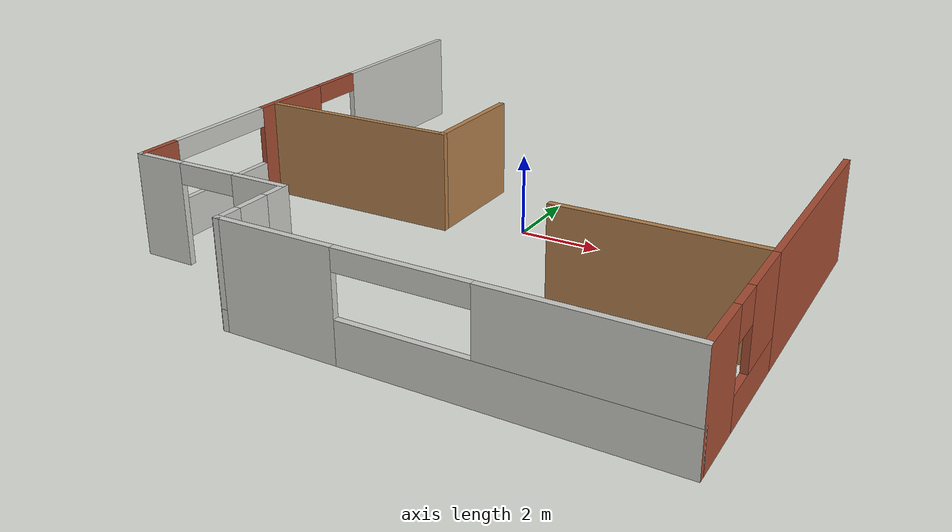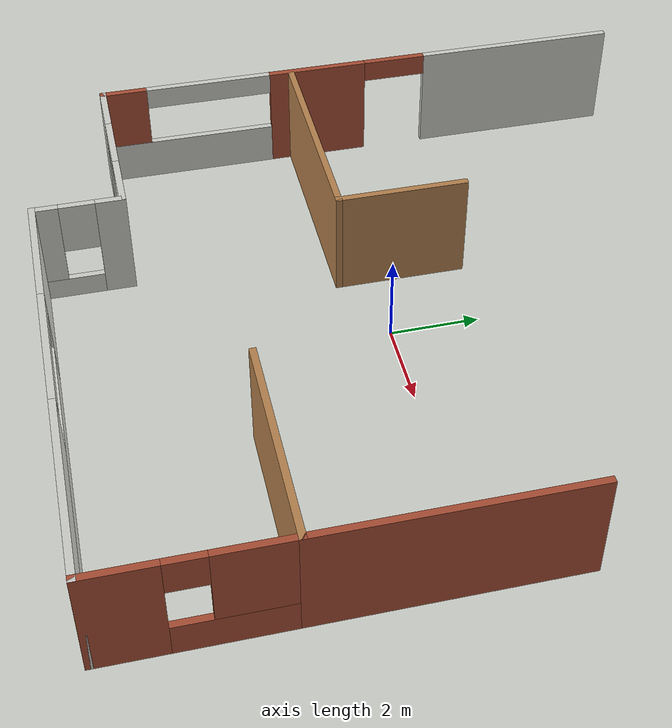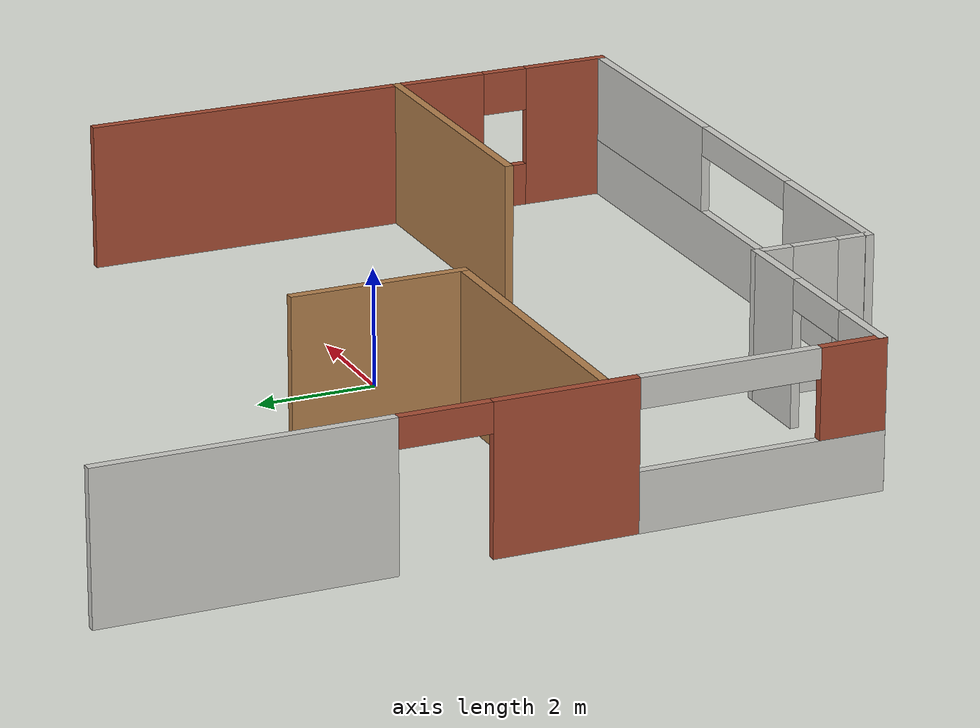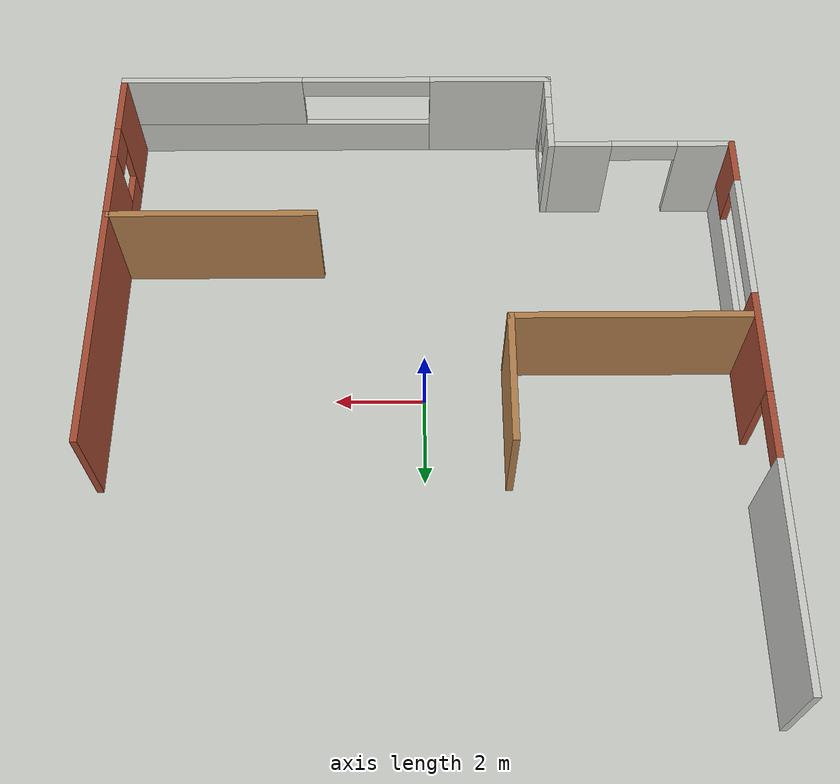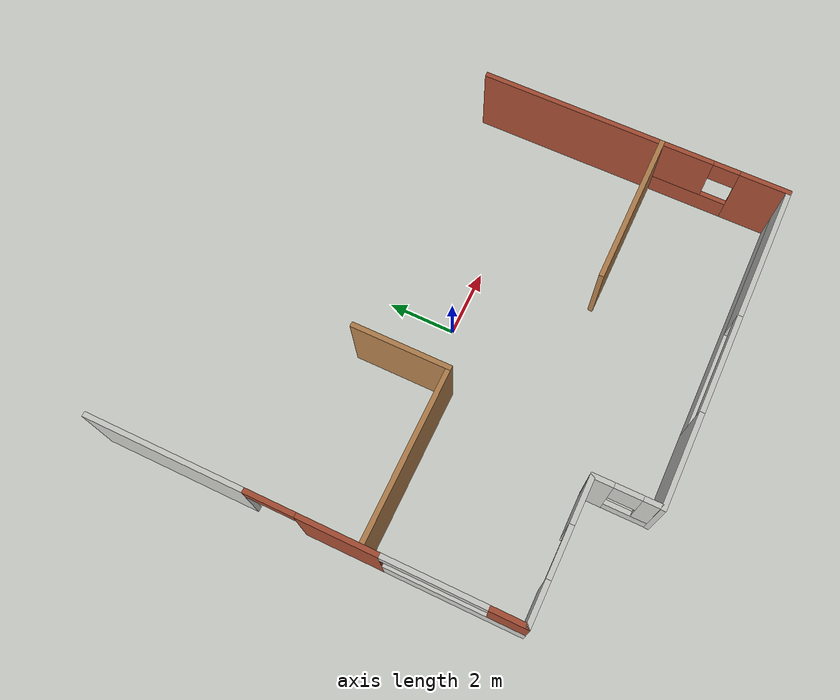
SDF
<sdf version="1.6">
 <model name="mybuilding_0">
  <link name="Wall_100">
   <pose>-4.97405 -5.32475 0 0 -0 0</pose>
   <inertial>
    <mass>1</mass>
    <inertia><ixx>1</ixx><ixy>0</ixy><ixz>0</ixz><iyy>1</iyy><iyz>0</iyz><izz>1</izz></inertia>
   </inertial>
   <visual name="Wall_100_Visual_0">
    <pose>-1.47284 0 1.25 0 -0 0</pose>
    <geometry><box><size>1.30431 0.15 2.5</size></box></geometry>
    <material>
     <script><uri>file://media/materials/scripts/gazebo.material</uri><name>Gazebo/CeilingTiled</name></script>
     <ambient>0.435 0.796 0.675 1</ambient>
     <diffuse>1 1 1 1</diffuse>
     <specular>0 0 0 1</specular>
     <emissive>0 0 0 1</emissive>
     <shader type="vertex"><normal_map>__default__</normal_map></shader>
    </material>
   </visual>
   <visual name="Wall_100_Visual_1">
    <pose>1.40216 0 1.25 0 -0 0</pose>
    <geometry><box><size>1.44569 0.15 2.5</size></box></geometry>
    <material>
     <script><uri>file://media/materials/scripts/gazebo.material</uri><name>Gazebo/CeilingTiled</name></script>
     <ambient>0.435 0.796 0.675 1</ambient>
     <diffuse>1 1 1 1</diffuse>
     <specular>0 0 0 1</specular>
     <emissive>0 0 0 1</emissive>
     <shader type="vertex"><normal_map>__default__</normal_map></shader>
    </material>
   </visual>
   <visual name="Wall_100_Visual_2">
    <pose>-0.07069 0 2.25 0 -0 0</pose>
    <geometry><box><size>1.5 0.15 0.5</size></box></geometry>
    <material>
     <script><uri>file://media/materials/scripts/gazebo.material</uri><name>Gazebo/CeilingTiled</name></script>
     <ambient>0.435 0.796 0.675 1</ambient>
     <diffuse>1 1 1 1</diffuse>
     <specular>0 0 0 1</specular>
     <emissive>0 0 0 1</emissive>
     <shader type="vertex"><normal_map>__default__</normal_map></shader>
    </material>
   </visual>
   <collision name="Wall_100_Collision_0">
    <pose>-1.47284 0 1.25 0 -0 0</pose>
    <geometry><box><size>1.30431 0.15 2.5</size></box></geometry>
    <surface>
     <friction>
      <ode><mu>1</mu><mu2>1</mu2><fdir1>0 0 0</fdir1><slip1>0</slip1><slip2>0</slip2></ode>
      <torsional>
       <coefficient>1</coefficient>
       <patch_radius>0</patch_radius>
       <surface_radius>0</surface_radius>
       <use_patch_radius>1</use_patch_radius>
       <ode><slip>0</slip></ode>
      </torsional>
     </friction>
     <bounce><restitution_coefficient>0</restitution_coefficient><threshold>1e+06</threshold></bounce>
     <contact>
      <collide_without_contact>0</collide_without_contact>
      <collide_without_contact_bitmask>1</collide_without_contact_bitmask>
      <collide_bitmask>1</collide_bitmask>
      <ode>
       <soft_cfm>0</soft_cfm>
       <soft_erp>0.2</soft_erp>
       <kp>1e+13</kp>
       <kd>1</kd>
       <max_vel>0.01</max_vel>
       <min_depth>0</min_depth>
      </ode>
      <bullet>
       <split_impulse>1</split_impulse>
       <split_impulse_penetration_threshold>-0.01</split_impulse_penetration_threshold>
       <soft_cfm>0</soft_cfm>
       <soft_erp>0.2</soft_erp>
       <kp>1e+13</kp>
       <kd>1</kd>
      </bullet>
     </contact>
    </surface>
   </collision>
   <collision name="Wall_100_Collision_1">
    <pose>1.40216 0 1.25 0 -0 0</pose>
    <geometry><box><size>1.44569 0.15 2.5</size></box></geometry>
    <surface>
     <friction>
      <ode><mu>1</mu><mu2>1</mu2><fdir1>0 0 0</fdir1><slip1>0</slip1><slip2>0</slip2></ode>
      <torsional>
       <coefficient>1</coefficient>
       <patch_radius>0</patch_radius>
       <surface_radius>0</surface_radius>
       <use_patch_radius>1</use_patch_radius>
       <ode><slip>0</slip></ode>
      </torsional>
     </friction>
     <bounce><restitution_coefficient>0</restitution_coefficient><threshold>1e+06</threshold></bounce>
     <contact>
      <collide_without_contact>0</collide_without_contact>
      <collide_without_contact_bitmask>1</collide_without_contact_bitmask>
      <collide_bitmask>1</collide_bitmask>
      <ode>
       <soft_cfm>0</soft_cfm>
       <soft_erp>0.2</soft_erp>
       <kp>1e+13</kp>
       <kd>1</kd>
       <max_vel>0.01</max_vel>
       <min_depth>0</min_depth>
      </ode>
      <bullet>
       <split_impulse>1</split_impulse>
       <split_impulse_penetration_threshold>-0.01</split_impulse_penetration_threshold>
       <soft_cfm>0</soft_cfm>
       <soft_erp>0.2</soft_erp>
       <kp>1e+13</kp>
       <kd>1</kd>
      </bullet>
     </contact>
    </surface>
   </collision>
   <collision name="Wall_100_Collision_2">
    <pose>-0.07069 0 2.25 0 -0 0</pose>
    <geometry><box><size>1.5 0.15 0.5</size></box></geometry>
    <surface>
     <friction>
      <ode><mu>1</mu><mu2>1</mu2><fdir1>0 0 0</fdir1><slip1>0</slip1><slip2>0</slip2></ode>
      <torsional>
       <coefficient>1</coefficient>
       <patch_radius>0</patch_radius>
       <surface_radius>0</surface_radius>
       <use_patch_radius>1</use_patch_radius>
       <ode><slip>0</slip></ode>
      </torsional>
     </friction>
     <bounce><restitution_coefficient>0</restitution_coefficient><threshold>1e+06</threshold></bounce>
     <contact>
      <collide_without_contact>0</collide_without_contact>
      <collide_without_contact_bitmask>1</collide_without_contact_bitmask>
      <collide_bitmask>1</collide_bitmask>
      <ode>
       <soft_cfm>0</soft_cfm>
       <soft_erp>0.2</soft_erp>
       <kp>1e+13</kp>
       <kd>1</kd>
       <max_vel>0.01</max_vel>
       <min_depth>0</min_depth>
      </ode>
      <bullet>
       <split_impulse>1</split_impulse>
       <split_impulse_penetration_threshold>-0.01</split_impulse_penetration_threshold>
       <soft_cfm>0</soft_cfm>
       <soft_erp>0.2</soft_erp>
       <kp>1e+13</kp>
       <kd>1</kd>
      </bullet>
     </contact>
    </surface>
   </collision>
  </link>
  <link name="Wall_102">
   <pose>-2.91535 -6.30192 0 0 0 -1.5708</pose>
   <inertial>
    <mass>1</mass>
    <inertia><ixx>1</ixx><ixy>0</ixy><ixz>0</ixz><iyy>1</iyy><iyz>0</iyz><izz>1</izz></inertia>
   </inertial>
   <visual name="Wall_102_Visual_0">
    <pose>-0.715877 0 1.25 0 -0 0</pose>
    <geometry><box><size>0.672904 0.15 2.5</size></box></geometry>
    <material>
     <script><uri>file://media/materials/scripts/gazebo.material</uri><name>Gazebo/CeilingTiled</name></script>
     <ambient>1 0.765 0.306 1</ambient>
     <diffuse>1 1 1 1</diffuse>
     <specular>0 0 0 1</specular>
     <emissive>0 0 0 1</emissive>
     <shader type="vertex"><normal_map>__default__</normal_map></shader>
    </material>
   </visual>
   <visual name="Wall_102_Visual_1">
    <pose>0.336452 0 0.25 0 -0 0</pose>
    <geometry><box><size>1.43175 0.15 0.5</size></box></geometry>
    <material>
     <script><uri>file://media/materials/scripts/gazebo.material</uri><name>Gazebo/CeilingTiled</name></script>
     <ambient>1 0.765 0.306 1</ambient>
     <diffuse>1 1 1 1</diffuse>
     <specular>0 0 0 1</specular>
     <emissive>0 0 0 1</emissive>
     <shader type="vertex"><normal_map>__default__</normal_map></shader>
    </material>
   </visual>
   <visual name="Wall_102_Visual_3">
    <pose>0.020576 0 1.9 0 -0 0</pose>
    <geometry><box><size>0.8 0.15 1.2</size></box></geometry>
    <material>
     <script><uri>file://media/materials/scripts/gazebo.material</uri><name>Gazebo/CeilingTiled</name></script>
     <ambient>1 0.765 0.306 1</ambient>
     <diffuse>1 1 1 1</diffuse>
     <specular>0 0 0 1</specular>
     <emissive>0 0 0 1</emissive>
     <shader type="vertex"><normal_map>__default__</normal_map></shader>
    </material>
   </visual>
   <visual name="Wall_102_Visual_2">
    <pose>0.736452 0 1.5 0 -0 0</pose>
    <geometry><box><size>0.631753 0.15 2</size></box></geometry>
    <material>
     <script><uri>file://media/materials/scripts/gazebo.material</uri><name>Gazebo/CeilingTiled</name></script>
     <ambient>1 0.765 0.306 1</ambient>
     <diffuse>1 1 1 1</diffuse>
     <specular>0 0 0 1</specular>
     <emissive>0 0 0 1</emissive>
     <shader type="vertex"><normal_map>__default__</normal_map></shader>
    </material>
   </visual>
   <collision name="Wall_102_Collision_3">
    <pose>0.020576 0 1.9 0 -0 0</pose>
    <geometry><box><size>0.8 0.15 1.2</size></box></geometry>
    <surface>
     <friction>
      <ode><mu>1</mu><mu2>1</mu2><fdir1>0 0 0</fdir1><slip1>0</slip1><slip2>0</slip2></ode>
      <torsional>
       <coefficient>1</coefficient>
       <patch_radius>0</patch_radius>
       <surface_radius>0</surface_radius>
       <use_patch_radius>1</use_patch_radius>
       <ode><slip>0</slip></ode>
      </torsional>
     </friction>
     <bounce><restitution_coefficient>0</restitution_coefficient><threshold>1e+06</threshold></bounce>
     <contact>
      <collide_without_contact>0</collide_without_contact>
      <collide_without_contact_bitmask>1</collide_without_contact_bitmask>
      <collide_bitmask>1</collide_bitmask>
      <ode>
       <soft_cfm>0</soft_cfm>
       <soft_erp>0.2</soft_erp>
       <kp>1e+13</kp>
       <kd>1</kd>
       <max_vel>0.01</max_vel>
       <min_depth>0</min_depth>
      </ode>
      <bullet>
       <split_impulse>1</split_impulse>
       <split_impulse_penetration_threshold>-0.01</split_impulse_penetration_threshold>
       <soft_cfm>0</soft_cfm>
       <soft_erp>0.2</soft_erp>
       <kp>1e+13</kp>
       <kd>1</kd>
      </bullet>
     </contact>
    </surface>
   </collision>
   <collision name="Wall_102_Collision_0">
    <pose>-0.715877 0 1.25 0 -0 0</pose>
    <geometry><box><size>0.672904 0.15 2.5</size></box></geometry>
    <surface>
     <friction>
      <ode><mu>1</mu><mu2>1</mu2><fdir1>0 0 0</fdir1><slip1>0</slip1><slip2>0</slip2></ode>
      <torsional>
       <coefficient>1</coefficient>
       <patch_radius>0</patch_radius>
       <surface_radius>0</surface_radius>
       <use_patch_radius>1</use_patch_radius>
       <ode><slip>0</slip></ode>
      </torsional>
     </friction>
     <bounce><restitution_coefficient>0</restitution_coefficient><threshold>1e+06</threshold></bounce>
     <contact>
      <collide_without_contact>0</collide_without_contact>
      <collide_without_contact_bitmask>1</collide_without_contact_bitmask>
      <collide_bitmask>1</collide_bitmask>
      <ode>
       <soft_cfm>0</soft_cfm>
       <soft_erp>0.2</soft_erp>
       <kp>1e+13</kp>
       <kd>1</kd>
       <max_vel>0.01</max_vel>
       <min_depth>0</min_depth>
      </ode>
      <bullet>
       <split_impulse>1</split_impulse>
       <split_impulse_penetration_threshold>-0.01</split_impulse_penetration_threshold>
       <soft_cfm>0</soft_cfm>
       <soft_erp>0.2</soft_erp>
       <kp>1e+13</kp>
       <kd>1</kd>
      </bullet>
     </contact>
    </surface>
   </collision>
   <collision name="Wall_102_Collision_1">
    <pose>0.336452 0 0.25 0 -0 0</pose>
    <geometry><box><size>1.43175 0.15 0.5</size></box></geometry>
    <surface>
     <friction>
      <ode><mu>1</mu><mu2>1</mu2><fdir1>0 0 0</fdir1><slip1>0</slip1><slip2>0</slip2></ode>
      <torsional>
       <coefficient>1</coefficient>
       <patch_radius>0</patch_radius>
       <surface_radius>0</surface_radius>
       <use_patch_radius>1</use_patch_radius>
       <ode><slip>0</slip></ode>
      </torsional>
     </friction>
     <bounce><restitution_coefficient>0</restitution_coefficient><threshold>1e+06</threshold></bounce>
     <contact>
      <collide_without_contact>0</collide_without_contact>
      <collide_without_contact_bitmask>1</collide_without_contact_bitmask>
      <collide_bitmask>1</collide_bitmask>
      <ode>
       <soft_cfm>0</soft_cfm>
       <soft_erp>0.2</soft_erp>
       <kp>1e+13</kp>
       <kd>1</kd>
       <max_vel>0.01</max_vel>
       <min_depth>0</min_depth>
      </ode>
      <bullet>
       <split_impulse>1</split_impulse>
       <split_impulse_penetration_threshold>-0.01</split_impulse_penetration_threshold>
       <soft_cfm>0</soft_cfm>
       <soft_erp>0.2</soft_erp>
       <kp>1e+13</kp>
       <kd>1</kd>
      </bullet>
     </contact>
    </surface>
   </collision>
   <collision name="Wall_102_Collision_2">
    <pose>0.736452 0 1.5 0 -0 0</pose>
    <geometry><box><size>0.631753 0.15 2</size></box></geometry>
    <surface>
     <friction>
      <ode><mu>1</mu><mu2>1</mu2><fdir1>0 0 0</fdir1><slip1>0</slip1><slip2>0</slip2></ode>
      <torsional>
       <coefficient>1</coefficient>
       <patch_radius>0</patch_radius>
       <surface_radius>0</surface_radius>
       <use_patch_radius>1</use_patch_radius>
       <ode><slip>0</slip></ode>
      </torsional>
     </friction>
     <bounce><restitution_coefficient>0</restitution_coefficient><threshold>1e+06</threshold></bounce>
     <contact>
      <collide_without_contact>0</collide_without_contact>
      <collide_without_contact_bitmask>1</collide_without_contact_bitmask>
      <collide_bitmask>1</collide_bitmask>
      <ode>
       <soft_cfm>0</soft_cfm>
       <soft_erp>0.2</soft_erp>
       <kp>1e+13</kp>
       <kd>1</kd>
       <max_vel>0.01</max_vel>
       <min_depth>0</min_depth>
      </ode>
      <bullet>
       <split_impulse>1</split_impulse>
       <split_impulse_penetration_threshold>-0.01</split_impulse_penetration_threshold>
       <soft_cfm>0</soft_cfm>
       <soft_erp>0.2</soft_erp>
       <kp>1e+13</kp>
       <kd>1</kd>
      </bullet>
     </contact>
    </surface>
   </collision>
  </link>
  <link name="Wall_104">
   <pose>2.05282 -7.27925 0 0 0 -3.1e-05</pose>
   <visual name="Wall_104_Visual_2">
    <pose>2.92537 0 1.75 0 -0 0</pose>
    <geometry><box><size>4.25299 0.15 1.5</size></box></geometry>
    <material>
     <script><uri>file://media/materials/scripts/gazebo.material</uri><name>Gazebo/CeilingTiled</name></script>
     <ambient>0.435294 0.796078 0.67451 1</ambient>
     <diffuse>1 1 1 1</diffuse>
     <specular>0 0 0 1</specular>
     <emissive>0 0 0 1</emissive>
    </material>
   </visual>
   <visual name="Wall_104_Visual_0">
    <pose>-3.62649 0 1.25 0 -0 0</pose>
    <geometry><box><size>2.85075 0.15 2.5</size></box></geometry>
    <material>
     <script><uri>file://media/materials/scripts/gazebo.material</uri><name>Gazebo/CeilingTiled</name></script>
     <ambient>0.435294 0.796078 0.67451 1</ambient>
     <diffuse>1 1 1 1</diffuse>
     <specular>0 0 0 1</specular>
     <emissive>0 0 0 1</emissive>
    </material>
   </visual>
   <visual name="Wall_104_Visual_1">
    <pose>1.42538 0 0.5 0 -0 0</pose>
    <geometry><box><size>7.25299 0.15 1</size></box></geometry>
    <material>
     <script><uri>file://media/materials/scripts/gazebo.material</uri><name>Gazebo/CeilingTiled</name></script>
     <ambient>0.435294 0.796078 0.67451 1</ambient>
     <diffuse>1 1 1 1</diffuse>
     <specular>0 0 0 1</specular>
     <emissive>0 0 0 1</emissive>
    </material>
   </visual>
   <visual name="Wall_104_Visual_3">
    <pose>-0.70112 0 2.25 0 -0 0</pose>
    <geometry><box><size>3 0.15 0.5</size></box></geometry>
    <material>
     <script><uri>file://media/materials/scripts/gazebo.material</uri><name>Gazebo/CeilingTiled</name></script>
     <ambient>0.435294 0.796078 0.67451 1</ambient>
     <diffuse>1 1 1 1</diffuse>
     <specular>0 0 0 1</specular>
     <emissive>0 0 0 1</emissive>
    </material>
   </visual>
   <collision name="Wall_104_Collision_0">
    <pose>-3.62649 0 1.25 0 -0 0</pose>
    <geometry><box><size>2.85075 0.15 2.5</size></box></geometry>
    <surface>
     <friction>
      <ode><mu>1</mu><mu2>1</mu2><fdir1>0 0 0</fdir1><slip1>0</slip1><slip2>0</slip2></ode>
      <torsional>
       <coefficient>1</coefficient>
       <patch_radius>0</patch_radius>
       <surface_radius>0</surface_radius>
       <use_patch_radius>1</use_patch_radius>
       <ode><slip>0</slip></ode>
      </torsional>
     </friction>
     <bounce><restitution_coefficient>0</restitution_coefficient><threshold>1e+06</threshold></bounce>
     <contact>
      <collide_without_contact>0</collide_without_contact>
      <collide_without_contact_bitmask>1</collide_without_contact_bitmask>
      <collide_bitmask>1</collide_bitmask>
      <ode>
       <soft_cfm>0</soft_cfm>
       <soft_erp>0.2</soft_erp>
       <kp>1e+13</kp>
       <kd>1</kd>
       <max_vel>0.01</max_vel>
       <min_depth>0</min_depth>
      </ode>
      <bullet>
       <split_impulse>1</split_impulse>
       <split_impulse_penetration_threshold>-0.01</split_impulse_penetration_threshold>
       <soft_cfm>0</soft_cfm>
       <soft_erp>0.2</soft_erp>
       <kp>1e+13</kp>
       <kd>1</kd>
      </bullet>
     </contact>
    </surface>
   </collision>
   <collision name="Wall_104_Collision_2">
    <pose>2.92537 0 1.75 0 -0 0</pose>
    <geometry><box><size>4.25299 0.15 1.5</size></box></geometry>
    <surface>
     <friction>
      <ode><mu>1</mu><mu2>1</mu2><fdir1>0 0 0</fdir1><slip1>0</slip1><slip2>0</slip2></ode>
      <torsional>
       <coefficient>1</coefficient>
       <patch_radius>0</patch_radius>
       <surface_radius>0</surface_radius>
       <use_patch_radius>1</use_patch_radius>
       <ode><slip>0</slip></ode>
      </torsional>
     </friction>
     <bounce><restitution_coefficient>0</restitution_coefficient><threshold>1e+06</threshold></bounce>
     <contact>
      <collide_without_contact>0</collide_without_contact>
      <collide_without_contact_bitmask>1</collide_without_contact_bitmask>
      <collide_bitmask>1</collide_bitmask>
      <ode>
       <soft_cfm>0</soft_cfm>
       <soft_erp>0.2</soft_erp>
       <kp>1e+13</kp>
       <kd>1</kd>
       <max_vel>0.01</max_vel>
       <min_depth>0</min_depth>
      </ode>
      <bullet>
       <split_impulse>1</split_impulse>
       <split_impulse_penetration_threshold>-0.01</split_impulse_penetration_threshold>
       <soft_cfm>0</soft_cfm>
       <soft_erp>0.2</soft_erp>
       <kp>1e+13</kp>
       <kd>1</kd>
      </bullet>
     </contact>
    </surface>
   </collision>
   <collision name="Wall_104_Collision_3">
    <pose>-0.70112 0 2.25 0 -0 0</pose>
    <geometry><box><size>3 0.15 0.5</size></box></geometry>
    <surface>
     <friction>
      <ode><mu>1</mu><mu2>1</mu2><fdir1>0 0 0</fdir1><slip1>0</slip1><slip2>0</slip2></ode>
      <torsional>
       <coefficient>1</coefficient>
       <patch_radius>0</patch_radius>
       <surface_radius>0</surface_radius>
       <use_patch_radius>1</use_patch_radius>
       <ode><slip>0</slip></ode>
      </torsional>
     </friction>
     <bounce><restitution_coefficient>0</restitution_coefficient><threshold>1e+06</threshold></bounce>
     <contact>
      <collide_without_contact>0</collide_without_contact>
      <collide_without_contact_bitmask>1</collide_without_contact_bitmask>
      <collide_bitmask>1</collide_bitmask>
      <ode>
       <soft_cfm>0</soft_cfm>
       <soft_erp>0.2</soft_erp>
       <kp>1e+13</kp>
       <kd>1</kd>
       <max_vel>0.01</max_vel>
       <min_depth>0</min_depth>
      </ode>
      <bullet>
       <split_impulse>1</split_impulse>
       <split_impulse_penetration_threshold>-0.01</split_impulse_penetration_threshold>
       <soft_cfm>0</soft_cfm>
       <soft_erp>0.2</soft_erp>
       <kp>1e+13</kp>
       <kd>1</kd>
      </bullet>
     </contact>
    </surface>
   </collision>
   <collision name="Wall_104_Collision_1">
    <pose>1.42538 0 0.5 0 -0 0</pose>
    <geometry><box><size>7.25299 0.15 1</size></box></geometry>
    <surface>
     <friction>
      <ode><mu>1</mu><mu2>1</mu2><fdir1>0 0 0</fdir1><slip1>0</slip1><slip2>0</slip2></ode>
      <torsional>
       <coefficient>1</coefficient>
       <patch_radius>0</patch_radius>
       <surface_radius>0</surface_radius>
       <use_patch_radius>1</use_patch_radius>
       <ode><slip>0</slip></ode>
      </torsional>
     </friction>
     <bounce><restitution_coefficient>0</restitution_coefficient><threshold>1e+06</threshold></bounce>
     <contact>
      <collide_without_contact>0</collide_without_contact>
      <collide_without_contact_bitmask>1</collide_without_contact_bitmask>
      <collide_bitmask>1</collide_bitmask>
      <ode>
       <soft_cfm>0</soft_cfm>
       <soft_erp>0.2</soft_erp>
       <kp>1e+13</kp>
       <kd>1</kd>
       <max_vel>0.01</max_vel>
       <min_depth>0</min_depth>
      </ode>
      <bullet>
       <split_impulse>1</split_impulse>
       <split_impulse_penetration_threshold>-0.01</split_impulse_penetration_threshold>
       <soft_cfm>0</soft_cfm>
       <soft_erp>0.2</soft_erp>
       <kp>1e+13</kp>
       <kd>1</kd>
      </bullet>
     </contact>
    </surface>
   </collision>
  </link>
  <link name="Wall_106">
   <pose>7.02969 -5.3499 0 0 -0 1.5708</pose>
   <visual name="Wall_106_Visual_0">
    <pose>-1.23742 0 1.25 0 -0 0</pose>
    <geometry><box><size>1.53383 0.15 2.5</size></box></geometry>
    <material>
     <script><uri>file://media/materials/scripts/gazebo.material</uri><name>Gazebo/Bricks</name></script>
     <ambient>1 1 1 1</ambient>
     <diffuse>1 1 1 1</diffuse>
     <specular>0.2 0.2 0.2 1</specular>
     <emissive>0 0 0 1</emissive>
    </material>
   </visual>
   <visual name="Wall_106_Visual_1">
    <pose>0.766915 0 0.375 0 -0 0</pose>
    <geometry><box><size>2.47484 0.15 0.75</size></box></geometry>
    <material>
     <script><uri>file://media/materials/scripts/gazebo.material</uri><name>Gazebo/Bricks</name></script>
     <ambient>1 1 1 1</ambient>
     <diffuse>1 1 1 1</diffuse>
     <specular>0.2 0.2 0.2 1</specular>
     <emissive>0 0 0 1</emissive>
    </material>
   </visual>
   <visual name="Wall_106_Visual_2">
    <pose>1.16691 0 1.625 0 -0 0</pose>
    <geometry><box><size>1.67484 0.15 1.75</size></box></geometry>
    <material>
     <script><uri>file://media/materials/scripts/gazebo.material</uri><name>Gazebo/Bricks</name></script>
     <ambient>1 1 1 1</ambient>
     <diffuse>1 1 1 1</diffuse>
     <specular>0.2 0.2 0.2 1</specular>
     <emissive>0 0 0 1</emissive>
    </material>
   </visual>
   <visual name="Wall_106_Visual_3">
    <pose>-0.070504 0 2.125 0 -0 0</pose>
    <geometry><box><size>0.8 0.15 0.75</size></box></geometry>
    <material>
     <script><uri>file://media/materials/scripts/gazebo.material</uri><name>Gazebo/Bricks</name></script>
     <ambient>1 1 1 1</ambient>
     <diffuse>1 1 1 1</diffuse>
     <specular>0.2 0.2 0.2 1</specular>
     <emissive>0 0 0 1</emissive>
    </material>
   </visual>
   <collision name="Wall_106_Collision_0">
    <pose>-1.23742 0 1.25 0 -0 0</pose>
    <geometry><box><size>1.53383 0.15 2.5</size></box></geometry>
    <surface>
     <friction>
      <ode><mu>1</mu><mu2>1</mu2><fdir1>0 0 0</fdir1><slip1>0</slip1><slip2>0</slip2></ode>
      <torsional>
       <coefficient>1</coefficient>
       <patch_radius>0</patch_radius>
       <surface_radius>0</surface_radius>
       <use_patch_radius>1</use_patch_radius>
       <ode><slip>0</slip></ode>
      </torsional>
     </friction>
     <bounce><restitution_coefficient>0</restitution_coefficient><threshold>1e+06</threshold></bounce>
     <contact>
      <collide_without_contact>0</collide_without_contact>
      <collide_without_contact_bitmask>1</collide_without_contact_bitmask>
      <collide_bitmask>1</collide_bitmask>
      <ode>
       <soft_cfm>0</soft_cfm>
       <soft_erp>0.2</soft_erp>
       <kp>1e+13</kp>
       <kd>1</kd>
       <max_vel>0.01</max_vel>
       <min_depth>0</min_depth>
      </ode>
      <bullet>
       <split_impulse>1</split_impulse>
       <split_impulse_penetration_threshold>-0.01</split_impulse_penetration_threshold>
       <soft_cfm>0</soft_cfm>
       <soft_erp>0.2</soft_erp>
       <kp>1e+13</kp>
       <kd>1</kd>
      </bullet>
     </contact>
    </surface>
   </collision>
   <collision name="Wall_106_Collision_2">
    <pose>1.16691 0 1.625 0 -0 0</pose>
    <geometry><box><size>1.67484 0.15 1.75</size></box></geometry>
    <surface>
     <friction>
      <ode><mu>1</mu><mu2>1</mu2><fdir1>0 0 0</fdir1><slip1>0</slip1><slip2>0</slip2></ode>
      <torsional>
       <coefficient>1</coefficient>
       <patch_radius>0</patch_radius>
       <surface_radius>0</surface_radius>
       <use_patch_radius>1</use_patch_radius>
       <ode><slip>0</slip></ode>
      </torsional>
     </friction>
     <bounce><restitution_coefficient>0</restitution_coefficient><threshold>1e+06</threshold></bounce>
     <contact>
      <collide_without_contact>0</collide_without_contact>
      <collide_without_contact_bitmask>1</collide_without_contact_bitmask>
      <collide_bitmask>1</collide_bitmask>
      <ode>
       <soft_cfm>0</soft_cfm>
       <soft_erp>0.2</soft_erp>
       <kp>1e+13</kp>
       <kd>1</kd>
       <max_vel>0.01</max_vel>
       <min_depth>0</min_depth>
      </ode>
      <bullet>
       <split_impulse>1</split_impulse>
       <split_impulse_penetration_threshold>-0.01</split_impulse_penetration_threshold>
       <soft_cfm>0</soft_cfm>
       <soft_erp>0.2</soft_erp>
       <kp>1e+13</kp>
       <kd>1</kd>
      </bullet>
     </contact>
    </surface>
   </collision>
   <collision name="Wall_106_Collision_1">
    <pose>0.766915 0 0.375 0 -0 0</pose>
    <geometry><box><size>2.47484 0.15 0.75</size></box></geometry>
    <surface>
     <friction>
      <ode><mu>1</mu><mu2>1</mu2><fdir1>0 0 0</fdir1><slip1>0</slip1><slip2>0</slip2></ode>
      <torsional>
       <coefficient>1</coefficient>
       <patch_radius>0</patch_radius>
       <surface_radius>0</surface_radius>
       <use_patch_radius>1</use_patch_radius>
       <ode><slip>0</slip></ode>
      </torsional>
     </friction>
     <bounce><restitution_coefficient>0</restitution_coefficient><threshold>1e+06</threshold></bounce>
     <contact>
      <collide_without_contact>0</collide_without_contact>
      <collide_without_contact_bitmask>1</collide_without_contact_bitmask>
      <collide_bitmask>1</collide_bitmask>
      <ode>
       <soft_cfm>0</soft_cfm>
       <soft_erp>0.2</soft_erp>
       <kp>1e+13</kp>
       <kd>1</kd>
       <max_vel>0.01</max_vel>
       <min_depth>0</min_depth>
      </ode>
      <bullet>
       <split_impulse>1</split_impulse>
       <split_impulse_penetration_threshold>-0.01</split_impulse_penetration_threshold>
       <soft_cfm>0</soft_cfm>
       <soft_erp>0.2</soft_erp>
       <kp>1e+13</kp>
       <kd>1</kd>
      </bullet>
     </contact>
    </surface>
   </collision>
   <collision name="Wall_106_Collision_3">
    <pose>-0.070504 0 2.125 0 -0 0</pose>
    <geometry><box><size>0.8 0.15 0.75</size></box></geometry>
    <surface>
     <friction>
      <ode><mu>1</mu><mu2>1</mu2><fdir1>0 0 0</fdir1><slip1>0</slip1><slip2>0</slip2></ode>
      <torsional>
       <coefficient>1</coefficient>
       <patch_radius>0</patch_radius>
       <surface_radius>0</surface_radius>
       <use_patch_radius>1</use_patch_radius>
       <ode><slip>0</slip></ode>
      </torsional>
     </friction>
     <bounce><restitution_coefficient>0</restitution_coefficient><threshold>1e+06</threshold></bounce>
     <contact>
      <collide_without_contact>0</collide_without_contact>
      <collide_without_contact_bitmask>1</collide_without_contact_bitmask>
      <collide_bitmask>1</collide_bitmask>
      <ode>
       <soft_cfm>0</soft_cfm>
       <soft_erp>0.2</soft_erp>
       <kp>1e+13</kp>
       <kd>1</kd>
       <max_vel>0.01</max_vel>
       <min_depth>0</min_depth>
      </ode>
      <bullet>
       <split_impulse>1</split_impulse>
       <split_impulse_penetration_threshold>-0.01</split_impulse_penetration_threshold>
       <soft_cfm>0</soft_cfm>
       <soft_erp>0.2</soft_erp>
       <kp>1e+13</kp>
       <kd>1</kd>
      </bullet>
     </contact>
    </surface>
   </collision>
  </link>
  <link name="Wall_108">
   <pose>4.72945 -3.42056 0 0 0 -3.14152</pose>
   <visual name="Wall_108_Visual">
    <pose>0 0 1.25 0 -0 0</pose>
    <geometry><box><size>4.75 0.15 2.5</size></box></geometry>
    <material>
     <script><uri>file://media/materials/scripts/gazebo.material</uri><name>Gazebo/Wood</name></script>
     <ambient>1 1 0.498039 1</ambient>
     <diffuse>1 1 1 1</diffuse>
     <specular>0.2 0.2 0.2 1</specular>
     <emissive>0 0 0 1</emissive>
    </material>
   </visual>
   <collision name="Wall_108_Collision">
    <pose>0 0 1.25 0 -0 0</pose>
    <geometry><box><size>4.75 0.15 2.5</size></box></geometry>
    <surface>
     <friction>
      <ode><mu>1</mu><mu2>1</mu2><fdir1>0 0 0</fdir1><slip1>0</slip1><slip2>0</slip2></ode>
      <torsional>
       <coefficient>1</coefficient>
       <patch_radius>0</patch_radius>
       <surface_radius>0</surface_radius>
       <use_patch_radius>1</use_patch_radius>
       <ode><slip>0</slip></ode>
      </torsional>
     </friction>
     <bounce><restitution_coefficient>0</restitution_coefficient><threshold>1e+06</threshold></bounce>
     <contact>
      <collide_without_contact>0</collide_without_contact>
      <collide_without_contact_bitmask>1</collide_without_contact_bitmask>
      <collide_bitmask>1</collide_bitmask>
      <ode>
       <soft_cfm>0</soft_cfm>
       <soft_erp>0.2</soft_erp>
       <kp>1e+13</kp>
       <kd>1</kd>
       <max_vel>0.01</max_vel>
       <min_depth>0</min_depth>
      </ode>
      <bullet>
       <split_impulse>1</split_impulse>
       <split_impulse_penetration_threshold>-0.01</split_impulse_penetration_threshold>
       <soft_cfm>0</soft_cfm>
       <soft_erp>0.2</soft_erp>
       <kp>1e+13</kp>
       <kd>1</kd>
      </bullet>
     </contact>
    </surface>
   </collision>
  </link>
  <link name="Wall_110">
   <pose>7.02969 -0.662398 0 0 -0 1.5708</pose>
   <visual name="Wall_110_Visual">
    <pose>0 0 1.25 0 -0 0</pose>
    <geometry><box><size>5.666 0.15 2.5</size></box></geometry>
    <material>
     <script><uri>file://media/materials/scripts/gazebo.material</uri><name>Gazebo/Bricks</name></script>
     <ambient>1 1 1 1</ambient>
     <diffuse>1 1 1 1</diffuse>
     <specular>0.2 0.2 0.2 1</specular>
     <emissive>0 0 0 1</emissive>
    </material>
   </visual>
   <collision name="Wall_110_Collision">
    <pose>0 0 1.25 0 -0 0</pose>
    <geometry><box><size>5.666 0.15 2.5</size></box></geometry>
    <surface>
     <friction>
      <ode><mu>1</mu><mu2>1</mu2><fdir1>0 0 0</fdir1><slip1>0</slip1><slip2>0</slip2></ode>
      <torsional>
       <coefficient>1</coefficient>
       <patch_radius>0</patch_radius>
       <surface_radius>0</surface_radius>
       <use_patch_radius>1</use_patch_radius>
       <ode><slip>0</slip></ode>
      </torsional>
     </friction>
     <bounce><restitution_coefficient>0</restitution_coefficient><threshold>1e+06</threshold></bounce>
     <contact>
      <collide_without_contact>0</collide_without_contact>
      <collide_without_contact_bitmask>1</collide_without_contact_bitmask>
      <collide_bitmask>1</collide_bitmask>
      <ode>
       <soft_cfm>0</soft_cfm>
       <soft_erp>0.2</soft_erp>
       <kp>1e+13</kp>
       <kd>1</kd>
       <max_vel>0.01</max_vel>
       <min_depth>0</min_depth>
      </ode>
      <bullet>
       <split_impulse>1</split_impulse>
       <split_impulse_penetration_threshold>-0.01</split_impulse_penetration_threshold>
       <soft_cfm>0</soft_cfm>
       <soft_erp>0.2</soft_erp>
       <kp>1e+13</kp>
       <kd>1</kd>
      </bullet>
     </contact>
    </surface>
   </collision>
  </link>
  <link name="Wall_128">
   <pose>-7.02982 0.979263 0 0 0 -1.5708</pose>
   <inertial>
    <mass>1</mass>
    <inertia><ixx>1</ixx><ixy>0</ixy><ixz>0</ixz><iyy>1</iyy><iyz>0</iyz><izz>1</izz></inertia>
   </inertial>
   <visual name="Wall_128_Visual_0">
    <pose>-3.99417 0 1.25 0 -0 0</pose>
    <geometry><box><size>4.76166 0.15 2.5</size></box></geometry>
    <material>
     <script><uri>file://media/materials/scripts/gazebo.material</uri><name>Gazebo/CeilingTiled</name></script>
     <ambient>0.2 0.6 0.8 1</ambient>
     <diffuse>1 1 1 1</diffuse>
     <specular>0.2 0.2 0.2 1</specular>
     <emissive>0 0 0 1</emissive>
     <shader type="vertex"><normal_map>__default__</normal_map></shader>
    </material>
   </visual>
   <visual name="Wall_128_Visual_1">
    <pose>1.07472 0 1.25 0 -0 0</pose>
    <geometry><box><size>2.37612 0.15 2.5</size></box></geometry>
    <material>
     <script><uri>file://media/materials/scripts/gazebo.material</uri><name>Gazebo/Bricks</name></script>
     <ambient>1 1 1 1</ambient>
     <diffuse>1 1 1 1</diffuse>
     <specular>0.2 0.2 0.2 1</specular>
     <emissive>0 0 0 1</emissive>
     <shader type="vertex"><normal_map>__default__</normal_map></shader>
    </material>
   </visual>
   <visual name="Wall_128_Visual_3">
    <pose>5.81889 0 1.75 0 -0 0</pose>
    <geometry><box><size>1.11222 0.15 1.5</size></box></geometry>
    <material>
     <script><uri>file://media/materials/scripts/gazebo.material</uri><name>Gazebo/Bricks</name></script>
     <ambient>1 1 1 1</ambient>
     <diffuse>1 1 1 1</diffuse>
     <specular>0.2 0.2 0.2 1</specular>
     <emissive>0 0 0 1</emissive>
     <shader type="vertex"><normal_map>__default__</normal_map></shader>
    </material>
   </visual>
   <visual name="Wall_128_Visual_2">
    <pose>4.31889 0 0.5 0 -0 0</pose>
    <geometry><box><size>4.11222 0.15 1</size></box></geometry>
    <material>
     <script><uri>file://media/materials/scripts/gazebo.material</uri><name>Gazebo/CeilingTiled</name></script>
     <ambient>0.6 1 0.5 1</ambient>
     <diffuse>1 1 1 1</diffuse>
     <specular>0.2 0.2 0.2 1</specular>
     <emissive>0 0 0 1</emissive>
     <shader type="vertex"><normal_map>__default__</normal_map></shader>
    </material>
   </visual>
   <visual name="Wall_128_Visual_4">
    <pose>-0.863345 0 2.25 0 -0 0</pose>
    <geometry><box><size>1.5 0.15 0.5</size></box></geometry>
    <material>
     <script><uri>file://media/materials/scripts/gazebo.material</uri><name>Gazebo/Bricks</name></script>
     <ambient>1 1 1 1</ambient>
     <diffuse>1 1 1 1</diffuse>
     <specular>0.2 0.2 0.2 1</specular>
     <emissive>0 0 0 1</emissive>
     <shader type="vertex"><normal_map>__default__</normal_map></shader>
    </material>
   </visual>
   <visual name="Wall_128_Visual_5">
    <pose>3.76278 0 2.25 0 -0 0</pose>
    <geometry><box><size>3 0.15 0.5</size></box></geometry>
    <material>
     <script><uri>file://media/materials/scripts/gazebo.material</uri><name>Gazebo/CeilingTiled</name></script>
     <ambient>0.3 0.4 0.3 1</ambient>
     <diffuse>1 1 1 1</diffuse>
     <specular>0.2 0.2 0.2 1</specular>
     <emissive>0 0 0 1</emissive>
     <shader type="vertex"><normal_map>__default__</normal_map></shader>
    </material>
   </visual>
   <collision name="Wall_128_Collision_0">
    <pose>-3.99417 0 1.25 0 -0 0</pose>
    <geometry><box><size>4.76166 0.15 2.5</size></box></geometry>
    <surface>
     <friction>
      <ode><mu>1</mu><mu2>1</mu2><fdir1>0 0 0</fdir1><slip1>0</slip1><slip2>0</slip2></ode>
      <torsional>
       <coefficient>1</coefficient>
       <patch_radius>0</patch_radius>
       <surface_radius>0</surface_radius>
       <use_patch_radius>1</use_patch_radius>
       <ode><slip>0</slip></ode>
      </torsional>
     </friction>
     <bounce><restitution_coefficient>0</restitution_coefficient><threshold>1e+06</threshold></bounce>
     <contact>
      <collide_without_contact>0</collide_without_contact>
      <collide_without_contact_bitmask>1</collide_without_contact_bitmask>
      <collide_bitmask>1</collide_bitmask>
      <ode>
       <soft_cfm>0</soft_cfm>
       <soft_erp>0.2</soft_erp>
       <kp>1e+13</kp>
       <kd>1</kd>
       <max_vel>0.01</max_vel>
       <min_depth>0</min_depth>
      </ode>
      <bullet>
       <split_impulse>1</split_impulse>
       <split_impulse_penetration_threshold>-0.01</split_impulse_penetration_threshold>
       <soft_cfm>0</soft_cfm>
       <soft_erp>0.2</soft_erp>
       <kp>1e+13</kp>
       <kd>1</kd>
      </bullet>
     </contact>
    </surface>
   </collision>
   <collision name="Wall_128_Collision_1">
    <pose>1.07472 0 1.25 0 -0 0</pose>
    <geometry><box><size>2.37612 0.15 2.5</size></box></geometry>
    <surface>
     <friction>
      <ode><mu>1</mu><mu2>1</mu2><fdir1>0 0 0</fdir1><slip1>0</slip1><slip2>0</slip2></ode>
      <torsional>
       <coefficient>1</coefficient>
       <patch_radius>0</patch_radius>
       <surface_radius>0</surface_radius>
       <use_patch_radius>1</use_patch_radius>
       <ode><slip>0</slip></ode>
      </torsional>
     </friction>
     <bounce><restitution_coefficient>0</restitution_coefficient><threshold>1e+06</threshold></bounce>
     <contact>
      <collide_without_contact>0</collide_without_contact>
      <collide_without_contact_bitmask>1</collide_without_contact_bitmask>
      <collide_bitmask>1</collide_bitmask>
      <ode>
       <soft_cfm>0</soft_cfm>
       <soft_erp>0.2</soft_erp>
       <kp>1e+13</kp>
       <kd>1</kd>
       <max_vel>0.01</max_vel>
       <min_depth>0</min_depth>
      </ode>
      <bullet>
       <split_impulse>1</split_impulse>
       <split_impulse_penetration_threshold>-0.01</split_impulse_penetration_threshold>
       <soft_cfm>0</soft_cfm>
       <soft_erp>0.2</soft_erp>
       <kp>1e+13</kp>
       <kd>1</kd>
      </bullet>
     </contact>
    </surface>
   </collision>
   <collision name="Wall_128_Collision_4">
    <pose>-0.863345 0 2.25 0 -0 0</pose>
    <geometry><box><size>1.5 0.15 0.5</size></box></geometry>
    <surface>
     <friction>
      <ode><mu>1</mu><mu2>1</mu2><fdir1>0 0 0</fdir1><slip1>0</slip1><slip2>0</slip2></ode>
      <torsional>
       <coefficient>1</coefficient>
       <patch_radius>0</patch_radius>
       <surface_radius>0</surface_radius>
       <use_patch_radius>1</use_patch_radius>
       <ode><slip>0</slip></ode>
      </torsional>
     </friction>
     <bounce><restitution_coefficient>0</restitution_coefficient><threshold>1e+06</threshold></bounce>
     <contact>
      <collide_without_contact>0</collide_without_contact>
      <collide_without_contact_bitmask>1</collide_without_contact_bitmask>
      <collide_bitmask>1</collide_bitmask>
      <ode>
       <soft_cfm>0</soft_cfm>
       <soft_erp>0.2</soft_erp>
       <kp>1e+13</kp>
       <kd>1</kd>
       <max_vel>0.01</max_vel>
       <min_depth>0</min_depth>
      </ode>
      <bullet>
       <split_impulse>1</split_impulse>
       <split_impulse_penetration_threshold>-0.01</split_impulse_penetration_threshold>
       <soft_cfm>0</soft_cfm>
       <soft_erp>0.2</soft_erp>
       <kp>1e+13</kp>
       <kd>1</kd>
      </bullet>
     </contact>
    </surface>
   </collision>
   <collision name="Wall_128_Collision_3">
    <pose>5.81889 0 1.75 0 -0 0</pose>
    <geometry><box><size>1.11222 0.15 1.5</size></box></geometry>
    <surface>
     <friction>
      <ode><mu>1</mu><mu2>1</mu2><fdir1>0 0 0</fdir1><slip1>0</slip1><slip2>0</slip2></ode>
      <torsional>
       <coefficient>1</coefficient>
       <patch_radius>0</patch_radius>
       <surface_radius>0</surface_radius>
       <use_patch_radius>1</use_patch_radius>
       <ode><slip>0</slip></ode>
      </torsional>
     </friction>
     <bounce><restitution_coefficient>0</restitution_coefficient><threshold>1e+06</threshold></bounce>
     <contact>
      <collide_without_contact>0</collide_without_contact>
      <collide_without_contact_bitmask>1</collide_without_contact_bitmask>
      <collide_bitmask>1</collide_bitmask>
      <ode>
       <soft_cfm>0</soft_cfm>
       <soft_erp>0.2</soft_erp>
       <kp>1e+13</kp>
       <kd>1</kd>
       <max_vel>0.01</max_vel>
       <min_depth>0</min_depth>
      </ode>
      <bullet>
       <split_impulse>1</split_impulse>
       <split_impulse_penetration_threshold>-0.01</split_impulse_penetration_threshold>
       <soft_cfm>0</soft_cfm>
       <soft_erp>0.2</soft_erp>
       <kp>1e+13</kp>
       <kd>1</kd>
      </bullet>
     </contact>
    </surface>
   </collision>
   <collision name="Wall_128_Collision_2">
    <pose>4.31889 0 0.5 0 -0 0</pose>
    <geometry><box><size>4.11222 0.15 1</size></box></geometry>
    <surface>
     <friction>
      <ode><mu>1</mu><mu2>1</mu2><fdir1>0 0 0</fdir1><slip1>0</slip1><slip2>0</slip2></ode>
      <torsional>
       <coefficient>1</coefficient>
       <patch_radius>0</patch_radius>
       <surface_radius>0</surface_radius>
       <use_patch_radius>1</use_patch_radius>
       <ode><slip>0</slip></ode>
      </torsional>
     </friction>
     <bounce><restitution_coefficient>0</restitution_coefficient><threshold>1e+06</threshold></bounce>
     <contact>
      <collide_without_contact>0</collide_without_contact>
      <collide_without_contact_bitmask>1</collide_without_contact_bitmask>
      <collide_bitmask>1</collide_bitmask>
      <ode>
       <soft_cfm>0</soft_cfm>
       <soft_erp>0.2</soft_erp>
       <kp>1e+13</kp>
       <kd>1</kd>
       <max_vel>0.01</max_vel>
       <min_depth>0</min_depth>
      </ode>
      <bullet>
       <split_impulse>1</split_impulse>
       <split_impulse_penetration_threshold>-0.01</split_impulse_penetration_threshold>
       <soft_cfm>0</soft_cfm>
       <soft_erp>0.2</soft_erp>
       <kp>1e+13</kp>
       <kd>1</kd>
      </bullet>
     </contact>
    </surface>
   </collision>
   <collision name="Wall_128_Collision_5">
    <pose>3.76278 0 2.25 0 -0 0</pose>
    <geometry><box><size>3 0.15 0.5</size></box></geometry>
    <surface>
     <friction>
      <ode><mu>1</mu><mu2>1</mu2><fdir1>0 0 0</fdir1><slip1>0</slip1><slip2>0</slip2></ode>
      <torsional>
       <coefficient>1</coefficient>
       <patch_radius>0</patch_radius>
       <surface_radius>0</surface_radius>
       <use_patch_radius>1</use_patch_radius>
       <ode><slip>0</slip></ode>
      </torsional>
     </friction>
     <bounce><restitution_coefficient>0</restitution_coefficient><threshold>1e+06</threshold></bounce>
     <contact>
      <collide_without_contact>0</collide_without_contact>
      <collide_without_contact_bitmask>1</collide_without_contact_bitmask>
      <collide_bitmask>1</collide_bitmask>
      <ode>
       <soft_cfm>0</soft_cfm>
       <soft_erp>0.2</soft_erp>
       <kp>1e+13</kp>
       <kd>1</kd>
       <max_vel>0.01</max_vel>
       <min_depth>0</min_depth>
      </ode>
      <bullet>
       <split_impulse>1</split_impulse>
       <split_impulse_penetration_threshold>-0.01</split_impulse_penetration_threshold>
       <soft_cfm>0</soft_cfm>
       <soft_erp>0.2</soft_erp>
       <kp>1e+13</kp>
       <kd>1</kd>
      </bullet>
     </contact>
    </surface>
   </collision>
  </link>
  <link name="Wall_132">
   <pose>-1.82031 0.670602 0 0 0 -1.5708</pose>
   <visual name="Wall_132_Visual">
    <pose>0 0 1.25 0 -0 0</pose>
    <geometry><box><size>3 0.15 2.5</size></box></geometry>
    <material>
     <script><uri>file://media/materials/scripts/gazebo.material</uri><name>Gazebo/Wood</name></script>
     <ambient>1 1 1 1</ambient>
     <diffuse>1 1 1 1</diffuse>
     <specular>0.2 0.2 0.2 1</specular>
     <emissive>0 0 0 1</emissive>
    </material>
   </visual>
   <collision name="Wall_132_Collision">
    <pose>0 0 1.25 0 -0 0</pose>
    <geometry><box><size>3 0.15 2.5</size></box></geometry>
    <surface>
     <friction>
      <ode><mu>1</mu><mu2>1</mu2><fdir1>0 0 0</fdir1><slip1>0</slip1><slip2>0</slip2></ode>
      <torsional>
       <coefficient>1</coefficient>
       <patch_radius>0</patch_radius>
       <surface_radius>0</surface_radius>
       <use_patch_radius>1</use_patch_radius>
       <ode><slip>0</slip></ode>
      </torsional>
     </friction>
     <bounce><restitution_coefficient>0</restitution_coefficient><threshold>1e+06</threshold></bounce>
     <contact>
      <collide_without_contact>0</collide_without_contact>
      <collide_without_contact_bitmask>1</collide_without_contact_bitmask>
      <collide_bitmask>1</collide_bitmask>
      <ode>
       <soft_cfm>0</soft_cfm>
       <soft_erp>0.2</soft_erp>
       <kp>1e+13</kp>
       <kd>1</kd>
       <max_vel>0.01</max_vel>
       <min_depth>0</min_depth>
      </ode>
      <bullet>
       <split_impulse>1</split_impulse>
       <split_impulse_penetration_threshold>-0.01</split_impulse_penetration_threshold>
       <soft_cfm>0</soft_cfm>
       <soft_erp>0.2</soft_erp>
       <kp>1e+13</kp>
       <kd>1</kd>
      </bullet>
     </contact>
    </surface>
   </collision>
  </link>
  <link name="Wall_133">
   <pose>-4.37031 -0.754398 0 0 -0 3.14159</pose>
   <visual name="Wall_133_Visual">
    <pose>0 0 1.25 0 -0 0</pose>
    <geometry><box><size>5.25 0.15 2.5</size></box></geometry>
    <material>
     <script><uri>file://media/materials/scripts/gazebo.material</uri><name>Gazebo/Wood</name></script>
     <ambient>1 1 1 1</ambient>
     <diffuse>1 1 1 1</diffuse>
     <specular>0.2 0.2 0.2 1</specular>
     <emissive>0 0 0 1</emissive>
    </material>
   </visual>
   <collision name="Wall_133_Collision">
    <pose>0 0 1.25 0 -0 0</pose>
    <geometry><box><size>5.25 0.15 2.5</size></box></geometry>
    <surface>
     <friction>
      <ode><mu>1</mu><mu2>1</mu2><fdir1>0 0 0</fdir1><slip1>0</slip1><slip2>0</slip2></ode>
      <torsional>
       <coefficient>1</coefficient>
       <patch_radius>0</patch_radius>
       <surface_radius>0</surface_radius>
       <use_patch_radius>1</use_patch_radius>
       <ode><slip>0</slip></ode>
      </torsional>
     </friction>
     <bounce><restitution_coefficient>0</restitution_coefficient><threshold>1e+06</threshold></bounce>
     <contact>
      <collide_without_contact>0</collide_without_contact>
      <collide_without_contact_bitmask>1</collide_without_contact_bitmask>
      <collide_bitmask>1</collide_bitmask>
      <ode>
       <soft_cfm>0</soft_cfm>
       <soft_erp>0.2</soft_erp>
       <kp>1e+13</kp>
       <kd>1</kd>
       <max_vel>0.01</max_vel>
       <min_depth>0</min_depth>
      </ode>
      <bullet>
       <split_impulse>1</split_impulse>
       <split_impulse_penetration_threshold>-0.01</split_impulse_penetration_threshold>
       <soft_cfm>0</soft_cfm>
       <soft_erp>0.2</soft_erp>
       <kp>1e+13</kp>
       <kd>1</kd>
      </bullet>
     </contact>
    </surface>
   </collision>
  </link>
  <static>1</static>
 </model>
</sdf>
